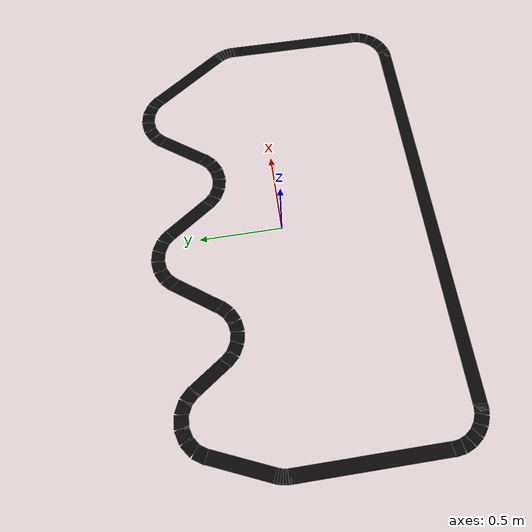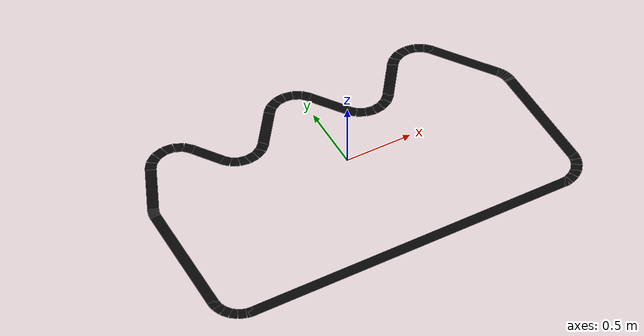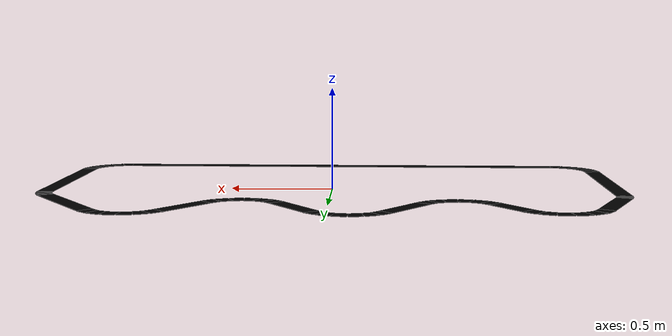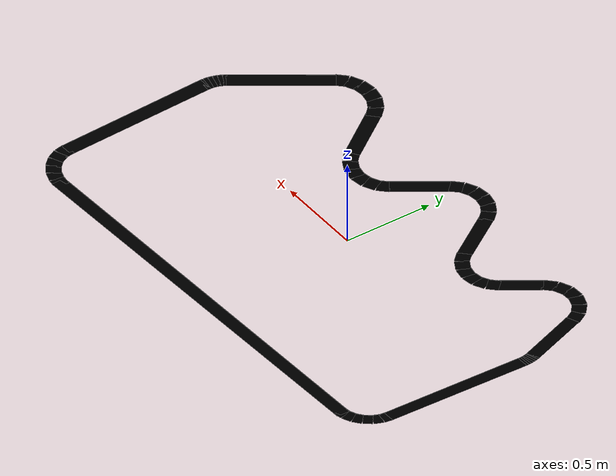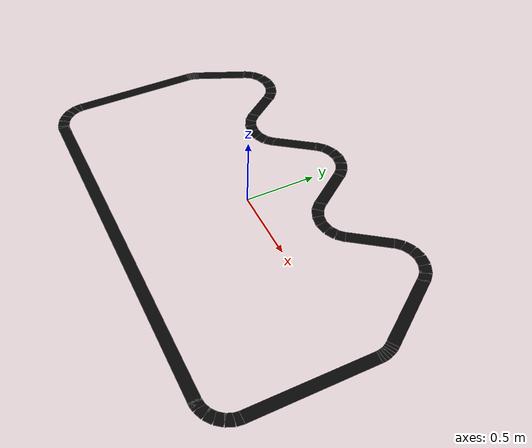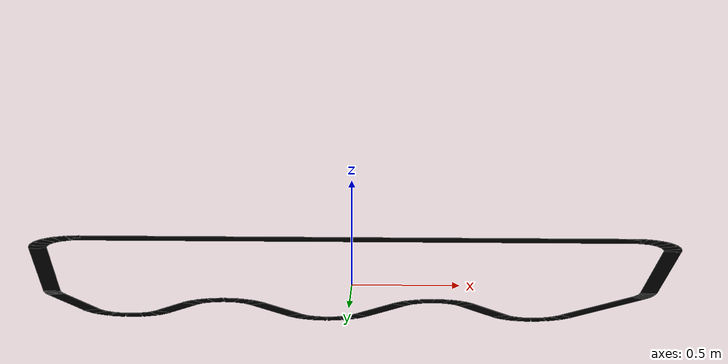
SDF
<?xml version="1.0"?>
<sdf version="1.8">
  <model name="line_track_zigzag">
    <static>true</static>
    <link name="track">
      <visual name='seg_000'>
        <pose>-1.226105 -0.898289 0.001000 0.000000 0.000000 -3.272492</pose>
        <geometry>
          <box>
            <size>0.056549 0.080000 0.002000</size>
          </box>
        </geometry>
      <material>
        <ambient>0.02 0.02 0.02 1</ambient>
        <diffuse>0.02 0.02 0.02 1</diffuse>
        <specular>0.0 0.0 0.0 1</specular>
      </material>
      </visual>
      <visual name='seg_001'>
        <pose>-1.276537 -0.884776 0.001000 0.000000 0.000000 -3.534292</pose>
        <geometry>
          <box>
            <size>0.056549 0.080000 0.002000</size>
          </box>
        </geometry>
      <material>
        <ambient>0.02 0.02 0.02 1</ambient>
        <diffuse>0.02 0.02 0.02 1</diffuse>
        <specular>0.0 0.0 0.0 1</specular>
      </material>
      </visual>
      <visual name='seg_002'>
        <pose>-1.321752 -0.858671 0.001000 0.000000 0.000000 -3.796091</pose>
        <geometry>
          <box>
            <size>0.056549 0.080000 0.002000</size>
          </box>
        </geometry>
      <material>
        <ambient>0.02 0.02 0.02 1</ambient>
        <diffuse>0.02 0.02 0.02 1</diffuse>
        <specular>0.0 0.0 0.0 1</specular>
      </material>
      </visual>
      <visual name='seg_003'>
        <pose>-1.358671 -0.821752 0.001000 0.000000 0.000000 -4.057891</pose>
        <geometry>
          <box>
            <size>0.056549 0.080000 0.002000</size>
          </box>
        </geometry>
      <material>
        <ambient>0.02 0.02 0.02 1</ambient>
        <diffuse>0.02 0.02 0.02 1</diffuse>
        <specular>0.0 0.0 0.0 1</specular>
      </material>
      </visual>
      <visual name='seg_004'>
        <pose>-1.384776 -0.776537 0.001000 0.000000 0.000000 -4.319690</pose>
        <geometry>
          <box>
            <size>0.056549 0.080000 0.002000</size>
          </box>
        </geometry>
      <material>
        <ambient>0.02 0.02 0.02 1</ambient>
        <diffuse>0.02 0.02 0.02 1</diffuse>
        <specular>0.0 0.0 0.0 1</specular>
      </material>
      </visual>
      <visual name='seg_005'>
        <pose>-1.398289 -0.726105 0.001000 0.000000 0.000000 -4.581489</pose>
        <geometry>
          <box>
            <size>0.056549 0.080000 0.002000</size>
          </box>
        </geometry>
      <material>
        <ambient>0.02 0.02 0.02 1</ambient>
        <diffuse>0.02 0.02 0.02 1</diffuse>
        <specular>0.0 0.0 0.0 1</specular>
      </material>
      </visual>
      <visual name='seg_006'>
        <pose>0.000000 -0.900000 0.001000 0.000000 0.000000 0.000000</pose>
        <geometry>
          <box>
            <size>2.472000 0.080000 0.002000</size>
          </box>
        </geometry>
      <material>
        <ambient>0.02 0.02 0.02 1</ambient>
        <diffuse>0.02 0.02 0.02 1</diffuse>
        <specular>0.0 0.0 0.0 1</specular>
      </material>
      </visual>
      <visual name='seg_007'>
        <pose>1.398289 -0.726105 0.001000 0.000000 0.000000 -1.701696</pose>
        <geometry>
          <box>
            <size>0.056549 0.080000 0.002000</size>
          </box>
        </geometry>
      <material>
        <ambient>0.02 0.02 0.02 1</ambient>
        <diffuse>0.02 0.02 0.02 1</diffuse>
        <specular>0.0 0.0 0.0 1</specular>
      </material>
      </visual>
      <visual name='seg_008'>
        <pose>1.384776 -0.776537 0.001000 0.000000 0.000000 -1.963495</pose>
        <geometry>
          <box>
            <size>0.056549 0.080000 0.002000</size>
          </box>
        </geometry>
      <material>
        <ambient>0.02 0.02 0.02 1</ambient>
        <diffuse>0.02 0.02 0.02 1</diffuse>
        <specular>0.0 0.0 0.0 1</specular>
      </material>
      </visual>
      <visual name='seg_009'>
        <pose>1.358671 -0.821752 0.001000 0.000000 0.000000 -2.225295</pose>
        <geometry>
          <box>
            <size>0.056549 0.080000 0.002000</size>
          </box>
        </geometry>
      <material>
        <ambient>0.02 0.02 0.02 1</ambient>
        <diffuse>0.02 0.02 0.02 1</diffuse>
        <specular>0.0 0.0 0.0 1</specular>
      </material>
      </visual>
      <visual name='seg_010'>
        <pose>1.321752 -0.858671 0.001000 0.000000 0.000000 -2.487094</pose>
        <geometry>
          <box>
            <size>0.056549 0.080000 0.002000</size>
          </box>
        </geometry>
      <material>
        <ambient>0.02 0.02 0.02 1</ambient>
        <diffuse>0.02 0.02 0.02 1</diffuse>
        <specular>0.0 0.0 0.0 1</specular>
      </material>
      </visual>
      <visual name='seg_011'>
        <pose>1.276537 -0.884776 0.001000 0.000000 0.000000 -2.748894</pose>
        <geometry>
          <box>
            <size>0.056549 0.080000 0.002000</size>
          </box>
        </geometry>
      <material>
        <ambient>0.02 0.02 0.02 1</ambient>
        <diffuse>0.02 0.02 0.02 1</diffuse>
        <specular>0.0 0.0 0.0 1</specular>
      </material>
      </visual>
      <visual name='seg_012'>
        <pose>1.226105 -0.898289 0.001000 0.000000 0.000000 -3.010693</pose>
        <geometry>
          <box>
            <size>0.056549 0.080000 0.002000</size>
          </box>
        </geometry>
      <material>
        <ambient>0.02 0.02 0.02 1</ambient>
        <diffuse>0.02 0.02 0.02 1</diffuse>
        <specular>0.0 0.0 0.0 1</specular>
      </material>
      </visual>
      <visual name='seg_013'>
        <pose>1.400000 -0.282047 0.001000 0.000000 0.000000 1.570796</pose>
        <geometry>
          <box>
            <size>0.860984 0.080000 0.002000</size>
          </box>
        </geometry>
      <material>
        <ambient>0.02 0.02 0.02 1</ambient>
        <diffuse>0.02 0.02 0.02 1</diffuse>
        <specular>0.0 0.0 0.0 1</specular>
      </material>
      </visual>
      <visual name='seg_014'>
        <pose>1.368535 0.243591 0.001000 0.000000 0.000000 -1.002234</pose>
        <geometry>
          <box>
            <size>0.022329 0.080000 0.002000</size>
          </box>
        </geometry>
      <material>
        <ambient>0.02 0.02 0.02 1</ambient>
        <diffuse>0.02 0.02 0.02 1</diffuse>
        <specular>0.0 0.0 0.0 1</specular>
      </material>
      </visual>
      <visual name='seg_015'>
        <pose>1.378748 0.225625 0.001000 0.000000 0.000000 -1.105609</pose>
        <geometry>
          <box>
            <size>0.022329 0.080000 0.002000</size>
          </box>
        </geometry>
      <material>
        <ambient>0.02 0.02 0.02 1</ambient>
        <diffuse>0.02 0.02 0.02 1</diffuse>
        <specular>0.0 0.0 0.0 1</specular>
      </material>
      </visual>
      <visual name='seg_016'>
        <pose>1.387051 0.206701 0.001000 0.000000 0.000000 -1.208984</pose>
        <geometry>
          <box>
            <size>0.022329 0.080000 0.002000</size>
          </box>
        </geometry>
      <material>
        <ambient>0.02 0.02 0.02 1</ambient>
        <diffuse>0.02 0.02 0.02 1</diffuse>
        <specular>0.0 0.0 0.0 1</specular>
      </material>
      </visual>
      <visual name='seg_017'>
        <pose>1.393358 0.187021 0.001000 0.000000 0.000000 -1.312359</pose>
        <geometry>
          <box>
            <size>0.022329 0.080000 0.002000</size>
          </box>
        </geometry>
      <material>
        <ambient>0.02 0.02 0.02 1</ambient>
        <diffuse>0.02 0.02 0.02 1</diffuse>
        <specular>0.0 0.0 0.0 1</specular>
      </material>
      </visual>
      <visual name='seg_018'>
        <pose>1.397600 0.166795 0.001000 0.000000 0.000000 -1.415734</pose>
        <geometry>
          <box>
            <size>0.022329 0.080000 0.002000</size>
          </box>
        </geometry>
      <material>
        <ambient>0.02 0.02 0.02 1</ambient>
        <diffuse>0.02 0.02 0.02 1</diffuse>
        <specular>0.0 0.0 0.0 1</specular>
      </material>
      </visual>
      <visual name='seg_019'>
        <pose>1.399733 0.146240 0.001000 0.000000 0.000000 -1.519109</pose>
        <geometry>
          <box>
            <size>0.022329 0.080000 0.002000</size>
          </box>
        </geometry>
      <material>
        <ambient>0.02 0.02 0.02 1</ambient>
        <diffuse>0.02 0.02 0.02 1</diffuse>
        <specular>0.0 0.0 0.0 1</specular>
      </material>
      </visual>
      <visual name='seg_020'>
        <pose>1.212747 0.462155 0.001000 0.000000 0.000000 2.191046</pose>
        <geometry>
          <box>
            <size>0.531624 0.080000 0.002000</size>
          </box>
        </geometry>
      <material>
        <ambient>0.02 0.02 0.02 1</ambient>
        <diffuse>0.02 0.02 0.02 1</diffuse>
        <specular>0.0 0.0 0.0 1</specular>
      </material>
      </visual>
      <visual name='seg_021'>
        <pose>0.757631 0.696374 0.001000 0.000000 0.000000 0.792122</pose>
        <geometry>
          <box>
            <size>0.068439 0.080000 0.002000</size>
          </box>
        </geometry>
      <material>
        <ambient>0.02 0.02 0.02 1</ambient>
        <diffuse>0.02 0.02 0.02 1</diffuse>
        <specular>0.0 0.0 0.0 1</specular>
      </material>
      </visual>
      <visual name='seg_022'>
        <pose>0.808484 0.733741 0.001000 0.000000 0.000000 0.475273</pose>
        <geometry>
          <box>
            <size>0.068439 0.080000 0.002000</size>
          </box>
        </geometry>
      <material>
        <ambient>0.02 0.02 0.02 1</ambient>
        <diffuse>0.02 0.02 0.02 1</diffuse>
        <specular>0.0 0.0 0.0 1</specular>
      </material>
      </visual>
      <visual name='seg_023'>
        <pose>0.868447 0.753402 0.001000 0.000000 0.000000 0.158424</pose>
        <geometry>
          <box>
            <size>0.068439 0.080000 0.002000</size>
          </box>
        </geometry>
      <material>
        <ambient>0.02 0.02 0.02 1</ambient>
        <diffuse>0.02 0.02 0.02 1</diffuse>
        <specular>0.0 0.0 0.0 1</specular>
      </material>
      </visual>
      <visual name='seg_024'>
        <pose>0.931553 0.753402 0.001000 0.000000 0.000000 -0.158424</pose>
        <geometry>
          <box>
            <size>0.068439 0.080000 0.002000</size>
          </box>
        </geometry>
      <material>
        <ambient>0.02 0.02 0.02 1</ambient>
        <diffuse>0.02 0.02 0.02 1</diffuse>
        <specular>0.0 0.0 0.0 1</specular>
      </material>
      </visual>
      <visual name='seg_025'>
        <pose>0.991516 0.733741 0.001000 0.000000 0.000000 -0.475273</pose>
        <geometry>
          <box>
            <size>0.068439 0.080000 0.002000</size>
          </box>
        </geometry>
      <material>
        <ambient>0.02 0.02 0.02 1</ambient>
        <diffuse>0.02 0.02 0.02 1</diffuse>
        <specular>0.0 0.0 0.0 1</specular>
      </material>
      </visual>
      <visual name='seg_026'>
        <pose>1.042369 0.696374 0.001000 0.000000 0.000000 -0.792122</pose>
        <geometry>
          <box>
            <size>0.068439 0.080000 0.002000</size>
          </box>
        </geometry>
      <material>
        <ambient>0.02 0.02 0.02 1</ambient>
        <diffuse>0.02 0.02 0.02 1</diffuse>
        <specular>0.0 0.0 0.0 1</specular>
      </material>
      </visual>
      <visual name='seg_027'>
        <pose>0.650000 0.550000 0.001000 0.000000 0.000000 -2.191046</pose>
        <geometry>
          <box>
            <size>0.309240 0.080000 0.002000</size>
          </box>
        </geometry>
      <material>
        <ambient>0.02 0.02 0.02 1</ambient>
        <diffuse>0.02 0.02 0.02 1</diffuse>
        <specular>0.0 0.0 0.0 1</specular>
      </material>
      </visual>
      <visual name='seg_028'>
        <pose>0.257631 0.403626 0.001000 0.000000 0.000000 -0.792122</pose>
        <geometry>
          <box>
            <size>0.068439 0.080000 0.002000</size>
          </box>
        </geometry>
      <material>
        <ambient>0.02 0.02 0.02 1</ambient>
        <diffuse>0.02 0.02 0.02 1</diffuse>
        <specular>0.0 0.0 0.0 1</specular>
      </material>
      </visual>
      <visual name='seg_029'>
        <pose>0.308484 0.366259 0.001000 0.000000 0.000000 -0.475273</pose>
        <geometry>
          <box>
            <size>0.068439 0.080000 0.002000</size>
          </box>
        </geometry>
      <material>
        <ambient>0.02 0.02 0.02 1</ambient>
        <diffuse>0.02 0.02 0.02 1</diffuse>
        <specular>0.0 0.0 0.0 1</specular>
      </material>
      </visual>
      <visual name='seg_030'>
        <pose>0.368447 0.346598 0.001000 0.000000 0.000000 -0.158424</pose>
        <geometry>
          <box>
            <size>0.068439 0.080000 0.002000</size>
          </box>
        </geometry>
      <material>
        <ambient>0.02 0.02 0.02 1</ambient>
        <diffuse>0.02 0.02 0.02 1</diffuse>
        <specular>0.0 0.0 0.0 1</specular>
      </material>
      </visual>
      <visual name='seg_031'>
        <pose>0.431553 0.346598 0.001000 0.000000 0.000000 0.158424</pose>
        <geometry>
          <box>
            <size>0.068439 0.080000 0.002000</size>
          </box>
        </geometry>
      <material>
        <ambient>0.02 0.02 0.02 1</ambient>
        <diffuse>0.02 0.02 0.02 1</diffuse>
        <specular>0.0 0.0 0.0 1</specular>
      </material>
      </visual>
      <visual name='seg_032'>
        <pose>0.491516 0.366259 0.001000 0.000000 0.000000 0.475273</pose>
        <geometry>
          <box>
            <size>0.068439 0.080000 0.002000</size>
          </box>
        </geometry>
      <material>
        <ambient>0.02 0.02 0.02 1</ambient>
        <diffuse>0.02 0.02 0.02 1</diffuse>
        <specular>0.0 0.0 0.0 1</specular>
      </material>
      </visual>
      <visual name='seg_033'>
        <pose>0.542369 0.403626 0.001000 0.000000 0.000000 0.792122</pose>
        <geometry>
          <box>
            <size>0.068439 0.080000 0.002000</size>
          </box>
        </geometry>
      <material>
        <ambient>0.02 0.02 0.02 1</ambient>
        <diffuse>0.02 0.02 0.02 1</diffuse>
        <specular>0.0 0.0 0.0 1</specular>
      </material>
      </visual>
      <visual name='seg_034'>
        <pose>0.150000 0.550000 0.001000 0.000000 0.000000 2.191046</pose>
        <geometry>
          <box>
            <size>0.309240 0.080000 0.002000</size>
          </box>
        </geometry>
      <material>
        <ambient>0.02 0.02 0.02 1</ambient>
        <diffuse>0.02 0.02 0.02 1</diffuse>
        <specular>0.0 0.0 0.0 1</specular>
      </material>
      </visual>
      <visual name='seg_035'>
        <pose>-0.242369 0.696374 0.001000 0.000000 0.000000 0.792122</pose>
        <geometry>
          <box>
            <size>0.068439 0.080000 0.002000</size>
          </box>
        </geometry>
      <material>
        <ambient>0.02 0.02 0.02 1</ambient>
        <diffuse>0.02 0.02 0.02 1</diffuse>
        <specular>0.0 0.0 0.0 1</specular>
      </material>
      </visual>
      <visual name='seg_036'>
        <pose>-0.191516 0.733741 0.001000 0.000000 0.000000 0.475273</pose>
        <geometry>
          <box>
            <size>0.068439 0.080000 0.002000</size>
          </box>
        </geometry>
      <material>
        <ambient>0.02 0.02 0.02 1</ambient>
        <diffuse>0.02 0.02 0.02 1</diffuse>
        <specular>0.0 0.0 0.0 1</specular>
      </material>
      </visual>
      <visual name='seg_037'>
        <pose>-0.131553 0.753402 0.001000 0.000000 0.000000 0.158424</pose>
        <geometry>
          <box>
            <size>0.068439 0.080000 0.002000</size>
          </box>
        </geometry>
      <material>
        <ambient>0.02 0.02 0.02 1</ambient>
        <diffuse>0.02 0.02 0.02 1</diffuse>
        <specular>0.0 0.0 0.0 1</specular>
      </material>
      </visual>
      <visual name='seg_038'>
        <pose>-0.068447 0.753402 0.001000 0.000000 0.000000 -0.158424</pose>
        <geometry>
          <box>
            <size>0.068439 0.080000 0.002000</size>
          </box>
        </geometry>
      <material>
        <ambient>0.02 0.02 0.02 1</ambient>
        <diffuse>0.02 0.02 0.02 1</diffuse>
        <specular>0.0 0.0 0.0 1</specular>
      </material>
      </visual>
      <visual name='seg_039'>
        <pose>-0.008484 0.733741 0.001000 0.000000 0.000000 -0.475273</pose>
        <geometry>
          <box>
            <size>0.068439 0.080000 0.002000</size>
          </box>
        </geometry>
      <material>
        <ambient>0.02 0.02 0.02 1</ambient>
        <diffuse>0.02 0.02 0.02 1</diffuse>
        <specular>0.0 0.0 0.0 1</specular>
      </material>
      </visual>
      <visual name='seg_040'>
        <pose>0.042369 0.696374 0.001000 0.000000 0.000000 -0.792122</pose>
        <geometry>
          <box>
            <size>0.068439 0.080000 0.002000</size>
          </box>
        </geometry>
      <material>
        <ambient>0.02 0.02 0.02 1</ambient>
        <diffuse>0.02 0.02 0.02 1</diffuse>
        <specular>0.0 0.0 0.0 1</specular>
      </material>
      </visual>
      <visual name='seg_041'>
        <pose>-0.350000 0.550000 0.001000 0.000000 0.000000 -2.191046</pose>
        <geometry>
          <box>
            <size>0.309240 0.080000 0.002000</size>
          </box>
        </geometry>
      <material>
        <ambient>0.02 0.02 0.02 1</ambient>
        <diffuse>0.02 0.02 0.02 1</diffuse>
        <specular>0.0 0.0 0.0 1</specular>
      </material>
      </visual>
      <visual name='seg_042'>
        <pose>-0.742369 0.403626 0.001000 0.000000 0.000000 -0.792122</pose>
        <geometry>
          <box>
            <size>0.068439 0.080000 0.002000</size>
          </box>
        </geometry>
      <material>
        <ambient>0.02 0.02 0.02 1</ambient>
        <diffuse>0.02 0.02 0.02 1</diffuse>
        <specular>0.0 0.0 0.0 1</specular>
      </material>
      </visual>
      <visual name='seg_043'>
        <pose>-0.691516 0.366259 0.001000 0.000000 0.000000 -0.475273</pose>
        <geometry>
          <box>
            <size>0.068439 0.080000 0.002000</size>
          </box>
        </geometry>
      <material>
        <ambient>0.02 0.02 0.02 1</ambient>
        <diffuse>0.02 0.02 0.02 1</diffuse>
        <specular>0.0 0.0 0.0 1</specular>
      </material>
      </visual>
      <visual name='seg_044'>
        <pose>-0.631553 0.346598 0.001000 0.000000 0.000000 -0.158424</pose>
        <geometry>
          <box>
            <size>0.068439 0.080000 0.002000</size>
          </box>
        </geometry>
      <material>
        <ambient>0.02 0.02 0.02 1</ambient>
        <diffuse>0.02 0.02 0.02 1</diffuse>
        <specular>0.0 0.0 0.0 1</specular>
      </material>
      </visual>
      <visual name='seg_045'>
        <pose>-0.568447 0.346598 0.001000 0.000000 0.000000 0.158424</pose>
        <geometry>
          <box>
            <size>0.068439 0.080000 0.002000</size>
          </box>
        </geometry>
      <material>
        <ambient>0.02 0.02 0.02 1</ambient>
        <diffuse>0.02 0.02 0.02 1</diffuse>
        <specular>0.0 0.0 0.0 1</specular>
      </material>
      </visual>
      <visual name='seg_046'>
        <pose>-0.508484 0.366259 0.001000 0.000000 0.000000 0.475273</pose>
        <geometry>
          <box>
            <size>0.068439 0.080000 0.002000</size>
          </box>
        </geometry>
      <material>
        <ambient>0.02 0.02 0.02 1</ambient>
        <diffuse>0.02 0.02 0.02 1</diffuse>
        <specular>0.0 0.0 0.0 1</specular>
      </material>
      </visual>
      <visual name='seg_047'>
        <pose>-0.457631 0.403626 0.001000 0.000000 0.000000 0.792122</pose>
        <geometry>
          <box>
            <size>0.068439 0.080000 0.002000</size>
          </box>
        </geometry>
      <material>
        <ambient>0.02 0.02 0.02 1</ambient>
        <diffuse>0.02 0.02 0.02 1</diffuse>
        <specular>0.0 0.0 0.0 1</specular>
      </material>
      </visual>
      <visual name='seg_048'>
        <pose>-0.828086 0.519320 0.001000 0.000000 0.000000 2.191046</pose>
        <geometry>
          <box>
            <size>0.231573 0.080000 0.002000</size>
          </box>
        </geometry>
      <material>
        <ambient>0.02 0.02 0.02 1</ambient>
        <diffuse>0.02 0.02 0.02 1</diffuse>
        <specular>0.0 0.0 0.0 1</specular>
      </material>
      </visual>
      <visual name='seg_049'>
        <pose>-1.223326 0.604363 0.001000 0.000000 0.000000 0.989534</pose>
        <geometry>
          <box>
            <size>0.076192 0.080000 0.002000</size>
          </box>
        </geometry>
      <material>
        <ambient>0.02 0.02 0.02 1</ambient>
        <diffuse>0.02 0.02 0.02 1</diffuse>
        <specular>0.0 0.0 0.0 1</specular>
      </material>
      </visual>
      <visual name='seg_050'>
        <pose>-1.175096 0.655349 0.001000 0.000000 0.000000 0.636792</pose>
        <geometry>
          <box>
            <size>0.076192 0.080000 0.002000</size>
          </box>
        </geometry>
      <material>
        <ambient>0.02 0.02 0.02 1</ambient>
        <diffuse>0.02 0.02 0.02 1</diffuse>
        <specular>0.0 0.0 0.0 1</specular>
      </material>
      </visual>
      <visual name='seg_051'>
        <pose>-1.112221 0.686533 0.001000 0.000000 0.000000 0.284050</pose>
        <geometry>
          <box>
            <size>0.076192 0.080000 0.002000</size>
          </box>
        </geometry>
      <material>
        <ambient>0.02 0.02 0.02 1</ambient>
        <diffuse>0.02 0.02 0.02 1</diffuse>
        <specular>0.0 0.0 0.0 1</specular>
      </material>
      </visual>
      <visual name='seg_052'>
        <pose>-1.042444 0.694076 0.001000 0.000000 0.000000 -0.068692</pose>
        <geometry>
          <box>
            <size>0.076192 0.080000 0.002000</size>
          </box>
        </geometry>
      <material>
        <ambient>0.02 0.02 0.02 1</ambient>
        <diffuse>0.02 0.02 0.02 1</diffuse>
        <specular>0.0 0.0 0.0 1</specular>
      </material>
      </visual>
      <visual name='seg_053'>
        <pose>-0.974358 0.677048 0.001000 0.000000 0.000000 -0.421434</pose>
        <geometry>
          <box>
            <size>0.076192 0.080000 0.002000</size>
          </box>
        </geometry>
      <material>
        <ambient>0.02 0.02 0.02 1</ambient>
        <diffuse>0.02 0.02 0.02 1</diffuse>
        <specular>0.0 0.0 0.0 1</specular>
      </material>
      </visual>
      <visual name='seg_054'>
        <pose>-0.916346 0.637547 0.001000 0.000000 0.000000 -0.774176</pose>
        <geometry>
          <box>
            <size>0.076192 0.080000 0.002000</size>
          </box>
        </geometry>
      <material>
        <ambient>0.02 0.02 0.02 1</ambient>
        <diffuse>0.02 0.02 0.02 1</diffuse>
        <specular>0.0 0.0 0.0 1</specular>
      </material>
      </visual>
      <visual name='seg_055'>
        <pose>-1.311915 0.405532 0.001000 0.000000 0.000000 -1.975688</pose>
        <geometry>
          <box>
            <size>0.376075 0.080000 0.002000</size>
          </box>
        </geometry>
      <material>
        <ambient>0.02 0.02 0.02 1</ambient>
        <diffuse>0.02 0.02 0.02 1</diffuse>
        <specular>0.0 0.0 0.0 1</specular>
      </material>
      </visual>
      <visual name='seg_056'>
        <pose>-1.399886 0.165695 0.001000 0.000000 0.000000 1.537055</pose>
        <geometry>
          <box>
            <size>0.014576 0.080000 0.002000</size>
          </box>
        </geometry>
      <material>
        <ambient>0.02 0.02 0.02 1</ambient>
        <diffuse>0.02 0.02 0.02 1</diffuse>
        <specular>0.0 0.0 0.0 1</specular>
      </material>
      </visual>
      <visual name='seg_057'>
        <pose>-1.398976 0.179158 0.001000 0.000000 0.000000 1.469573</pose>
        <geometry>
          <box>
            <size>0.014576 0.080000 0.002000</size>
          </box>
        </geometry>
      <material>
        <ambient>0.02 0.02 0.02 1</ambient>
        <diffuse>0.02 0.02 0.02 1</diffuse>
        <specular>0.0 0.0 0.0 1</specular>
      </material>
      </visual>
      <visual name='seg_058'>
        <pose>-1.397161 0.192530 0.001000 0.000000 0.000000 1.402091</pose>
        <geometry>
          <box>
            <size>0.014576 0.080000 0.002000</size>
          </box>
        </geometry>
      <material>
        <ambient>0.02 0.02 0.02 1</ambient>
        <diffuse>0.02 0.02 0.02 1</diffuse>
        <specular>0.0 0.0 0.0 1</specular>
      </material>
      </visual>
      <visual name='seg_059'>
        <pose>-1.394447 0.205748 0.001000 0.000000 0.000000 1.334609</pose>
        <geometry>
          <box>
            <size>0.014576 0.080000 0.002000</size>
          </box>
        </geometry>
      <material>
        <ambient>0.02 0.02 0.02 1</ambient>
        <diffuse>0.02 0.02 0.02 1</diffuse>
        <specular>0.0 0.0 0.0 1</specular>
      </material>
      </visual>
      <visual name='seg_060'>
        <pose>-1.390849 0.218753 0.001000 0.000000 0.000000 1.267127</pose>
        <geometry>
          <box>
            <size>0.014576 0.080000 0.002000</size>
          </box>
        </geometry>
      <material>
        <ambient>0.02 0.02 0.02 1</ambient>
        <diffuse>0.02 0.02 0.02 1</diffuse>
        <specular>0.0 0.0 0.0 1</specular>
      </material>
      </visual>
      <visual name='seg_061'>
        <pose>-1.386382 0.231486 0.001000 0.000000 0.000000 1.199646</pose>
        <geometry>
          <box>
            <size>0.014576 0.080000 0.002000</size>
          </box>
        </geometry>
      <material>
        <ambient>0.02 0.02 0.02 1</ambient>
        <diffuse>0.02 0.02 0.02 1</diffuse>
        <specular>0.0 0.0 0.0 1</specular>
      </material>
      </visual>
      <visual name='seg_062'>
        <pose>-1.400000 -0.270526 0.001000 0.000000 0.000000 -1.570796</pose>
        <geometry>
          <box>
            <size>0.884717 0.080000 0.002000</size>
          </box>
        </geometry>
      <material>
        <ambient>0.02 0.02 0.02 1</ambient>
        <diffuse>0.02 0.02 0.02 1</diffuse>
        <specular>0.0 0.0 0.0 1</specular>
      </material>
      </visual>
    </link>
  </model>
</sdf>
